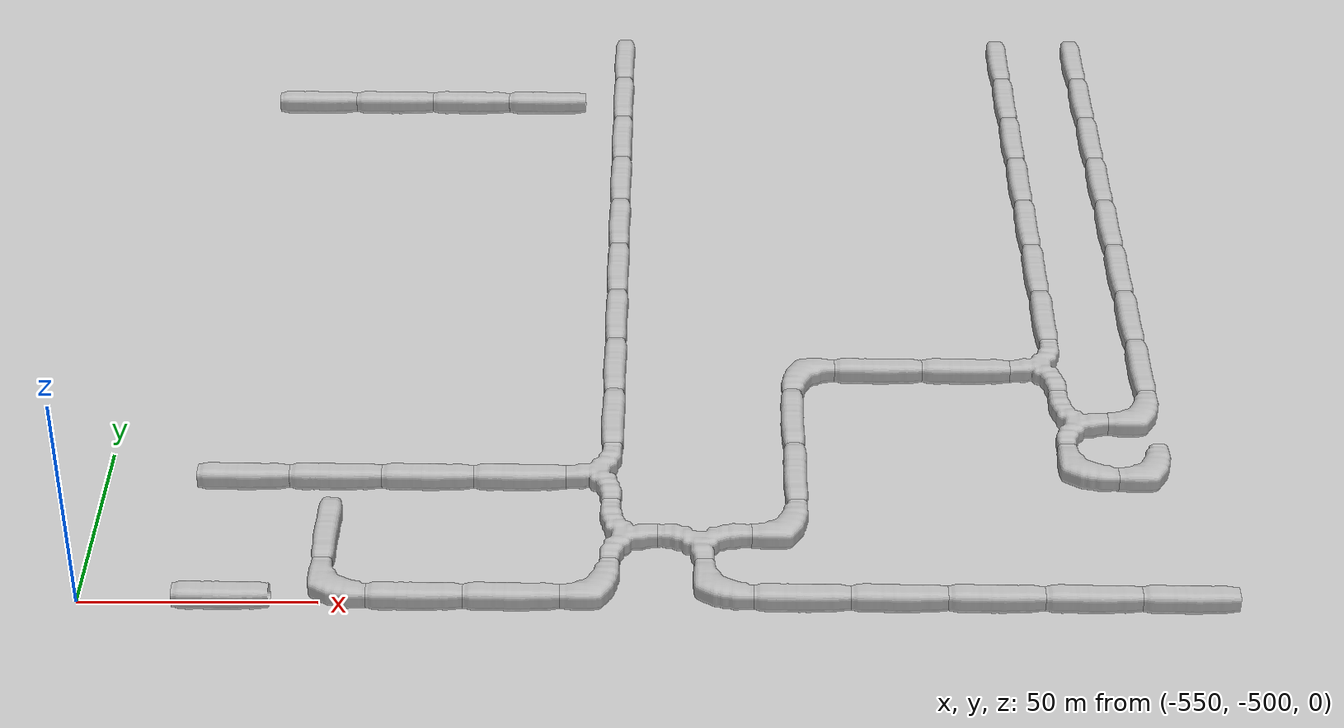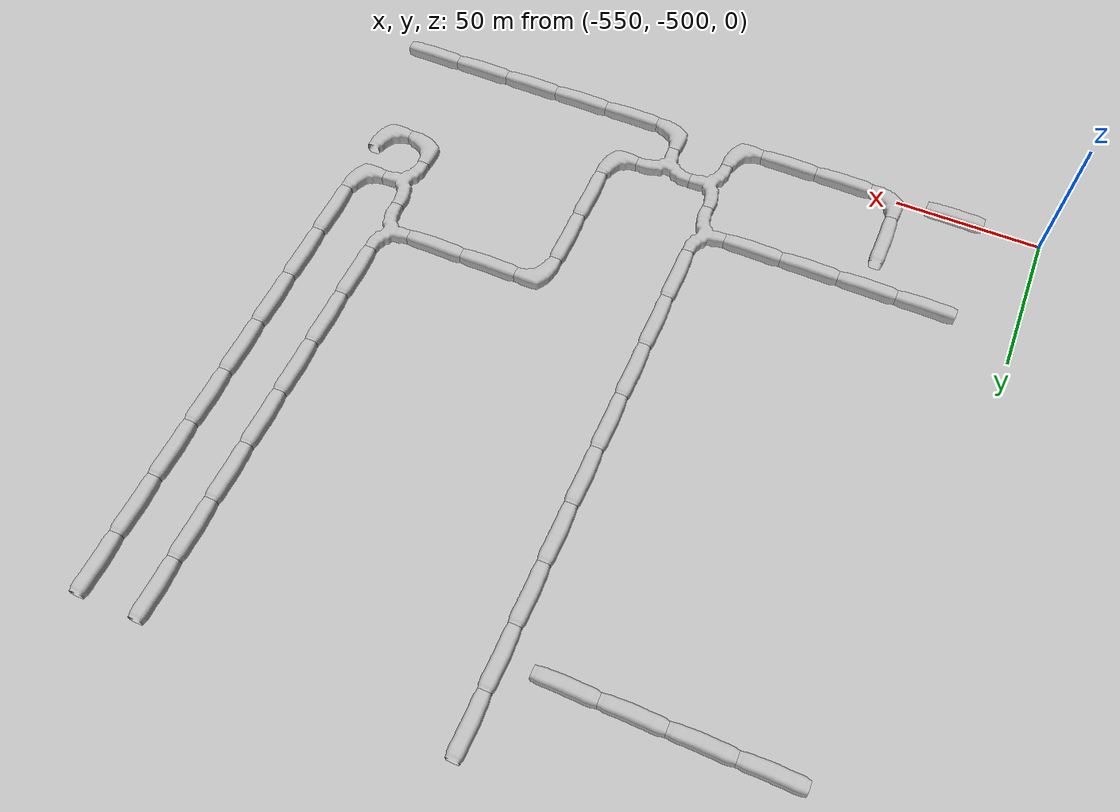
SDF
<sdf version="1.6">
 <world name="cave_32000_64">
  <include>
   <static>true</static>
   <name>cave_-22_-14</name>
   <pose>-440 -280 0 0 0 0.0</pose>
   <uri>model://cave_straight_20m</uri>
  </include>
  <include>
   <static>true</static>
   <name>cave_-22_-15</name>
   <pose>-440 -300 0 0 0 0.0</pose>
   <uri>model://cave_straight_20m</uri>
  </include>
  <include>
   <static>true</static>
   <name>cave_-22_-16</name>
   <pose>-440 -320 0 0 0 0.0</pose>
   <uri>model://cave_straight_20m</uri>
  </include>
  <include>
   <static>true</static>
   <name>cave_-22_-17</name>
   <pose>-440 -340 0 0 0 0.0</pose>
   <uri>model://cave_straight_20m</uri>
  </include>
  <include>
   <static>true</static>
   <name>cave_-22_-18</name>
   <pose>-440 -360 0 0 0 0.0</pose>
   <uri>model://cave_straight_20m</uri>
  </include>
  <include>
   <static>true</static>
   <name>cave_-22_-19</name>
   <pose>-440 -380 0 0 0 0.0</pose>
   <uri>model://cave_straight_20m</uri>
  </include>
  <include>
   <static>true</static>
   <name>cave_-22_-20</name>
   <pose>-440 -400 0 0 0 0.0</pose>
   <uri>model://cave_straight_20m</uri>
  </include>
  <include>
   <static>true</static>
   <name>cave_-22_-21</name>
   <pose>-440 -420 0 0 0 0.0</pose>
   <uri>model://cave_straight_20m</uri>
  </include>
  <include>
   <static>true</static>
   <name>cave_-22_-22</name>
   <pose>-440 -440 0 0 0 0.0</pose>
   <uri>model://cave_straight_20m</uri>
  </include>
  <include>
   <static>true</static>
   <name>cave_-22_-23</name>
   <pose>-440 -460 0 0 0 1.5707963267948966</pose>
   <uri>model://cave_3way_20m</uri>
  </include>
  <include>
   <static>true</static>
   <name>cave_-22_-24</name>
   <pose>-440 -480 0 0 0 -1.5707963267948966</pose>
   <uri>model://cave_3way_20m</uri>
  </include>
  <include>
   <static>true</static>
   <name>cave_-21_-24</name>
   <pose>-420 -480 0 0 0 3.141592653589793</pose>
   <uri>model://cave_3way_20m</uri>
  </include>
  <include>
   <static>true</static>
   <name>cave_-20_-24</name>
   <pose>-400 -480 0 0 0 1.5707963267948966</pose>
   <uri>model://cave_L_20m</uri>
  </include>
  <include>
   <static>true</static>
   <name>cave_-20_-23</name>
   <pose>-400 -460 0 0 0 0.0</pose>
   <uri>model://cave_straight_20m</uri>
  </include>
  <include>
   <static>true</static>
   <name>cave_-20_-22</name>
   <pose>-400 -440 0 0 0 0.0</pose>
   <uri>model://cave_straight_20m</uri>
  </include>
  <include>
   <static>true</static>
   <name>cave_-20_-21</name>
   <pose>-400 -420 0 0 0 -1.5707963267948966</pose>
   <uri>model://cave_L_20m</uri>
  </include>
  <include>
   <static>true</static>
   <name>cave_-19_-21</name>
   <pose>-380 -420 0 0 0 1.5707963267948966</pose>
   <uri>model://cave_straight_20m</uri>
  </include>
  <include>
   <static>true</static>
   <name>cave_-18_-21</name>
   <pose>-360 -420 0 0 0 1.5707963267948966</pose>
   <uri>model://cave_straight_20m</uri>
  </include>
  <include>
   <static>true</static>
   <name>cave_-17_-21</name>
   <pose>-340 -420 0 0 0 1.5707963267948966</pose>
   <uri>model://cave_3way_20m</uri>
  </include>
  <include>
   <static>true</static>
   <name>cave_-17_-22</name>
   <pose>-340 -440 0 0 0 -1.5707963267948966</pose>
   <uri>model://cave_3way_20m</uri>
  </include>
  <include>
   <static>true</static>
   <name>cave_-16_-22</name>
   <pose>-320 -440 0 0 0 1.5707963267948966</pose>
   <uri>model://cave_L_20m</uri>
  </include>
  <include>
   <static>true</static>
   <name>cave_-16_-21</name>
   <pose>-320 -420 0 0 0 0.0</pose>
   <uri>model://cave_straight_20m</uri>
  </include>
  <include>
   <static>true</static>
   <name>cave_-16_-20</name>
   <pose>-320 -400 0 0 0 0.0</pose>
   <uri>model://cave_straight_20m</uri>
  </include>
  <include>
   <static>true</static>
   <name>cave_-16_-19</name>
   <pose>-320 -380 0 0 0 0.0</pose>
   <uri>model://cave_straight_20m</uri>
  </include>
  <include>
   <static>true</static>
   <name>cave_-16_-18</name>
   <pose>-320 -360 0 0 0 0.0</pose>
   <uri>model://cave_straight_20m</uri>
  </include>
  <include>
   <static>true</static>
   <name>cave_-16_-17</name>
   <pose>-320 -340 0 0 0 0.0</pose>
   <uri>model://cave_straight_20m</uri>
  </include>
  <include>
   <static>true</static>
   <name>cave_-16_-16</name>
   <pose>-320 -320 0 0 0 0.0</pose>
   <uri>model://cave_straight_20m</uri>
  </include>
  <include>
   <static>true</static>
   <name>cave_-16_-15</name>
   <pose>-320 -300 0 0 0 0.0</pose>
   <uri>model://cave_straight_20m</uri>
  </include>
  <include>
   <static>true</static>
   <name>cave_-16_-14</name>
   <pose>-320 -280 0 0 0 0.0</pose>
   <uri>model://cave_straight_20m</uri>
  </include>
  <include>
   <static>true</static>
   <name>cave_-17_-23</name>
   <pose>-340 -460 0 0 0 0.0</pose>
   <uri>model://cave_L_20m</uri>
  </include>
  <include>
   <static>true</static>
   <name>cave_-16_-23</name>
   <pose>-320 -460 0 0 0 1.5707963267948966</pose>
   <uri>model://cave_L_20m</uri>
  </include>
  <include>
   <static>true</static>
   <name>cave_-17_-20</name>
   <pose>-340 -400 0 0 0 0.0</pose>
   <uri>model://cave_straight_20m</uri>
  </include>
  <include>
   <static>true</static>
   <name>cave_-17_-19</name>
   <pose>-340 -380 0 0 0 0.0</pose>
   <uri>model://cave_straight_20m</uri>
  </include>
  <include>
   <static>true</static>
   <name>cave_-17_-18</name>
   <pose>-340 -360 0 0 0 0.0</pose>
   <uri>model://cave_straight_20m</uri>
  </include>
  <include>
   <static>true</static>
   <name>cave_-17_-17</name>
   <pose>-340 -340 0 0 0 0.0</pose>
   <uri>model://cave_straight_20m</uri>
  </include>
  <include>
   <static>true</static>
   <name>cave_-17_-16</name>
   <pose>-340 -320 0 0 0 0.0</pose>
   <uri>model://cave_straight_20m</uri>
  </include>
  <include>
   <static>true</static>
   <name>cave_-17_-15</name>
   <pose>-340 -300 0 0 0 0.0</pose>
   <uri>model://cave_straight_20m</uri>
  </include>
  <include>
   <static>true</static>
   <name>cave_-17_-14</name>
   <pose>-340 -280 0 0 0 0.0</pose>
   <uri>model://cave_straight_20m</uri>
  </include>
  <include>
   <static>true</static>
   <name>cave_-21_-25</name>
   <pose>-420 -500 0 0 0 0.0</pose>
   <uri>model://cave_L_20m</uri>
  </include>
  <include>
   <static>true</static>
   <name>cave_-20_-25</name>
   <pose>-400 -500 0 0 0 1.5707963267948966</pose>
   <uri>model://cave_straight_20m</uri>
  </include>
  <include>
   <static>true</static>
   <name>cave_-19_-25</name>
   <pose>-380 -500 0 0 0 1.5707963267948966</pose>
   <uri>model://cave_straight_20m</uri>
  </include>
  <include>
   <static>true</static>
   <name>cave_-18_-25</name>
   <pose>-360 -500 0 0 0 1.5707963267948966</pose>
   <uri>model://cave_straight_20m</uri>
  </include>
  <include>
   <static>true</static>
   <name>cave_-17_-25</name>
   <pose>-340 -500 0 0 0 1.5707963267948966</pose>
   <uri>model://cave_straight_20m</uri>
  </include>
  <include>
   <static>true</static>
   <name>cave_-16_-25</name>
   <pose>-320 -500 0 0 0 1.5707963267948966</pose>
   <uri>model://cave_straight_20m</uri>
  </include>
  <include>
   <static>true</static>
   <name>cave_-22_-25</name>
   <pose>-440 -500 0 0 0 1.5707963267948966</pose>
   <uri>model://cave_L_20m</uri>
  </include>
  <include>
   <static>true</static>
   <name>cave_-23_-25</name>
   <pose>-460 -500 0 0 0 1.5707963267948966</pose>
   <uri>model://cave_straight_20m</uri>
  </include>
  <include>
   <static>true</static>
   <name>cave_-24_-25</name>
   <pose>-480 -500 0 0 0 1.5707963267948966</pose>
   <uri>model://cave_straight_20m</uri>
  </include>
  <include>
   <static>true</static>
   <name>cave_-25_-25</name>
   <pose>-500 -500 0 0 0 0.0</pose>
   <uri>model://cave_L_20m</uri>
  </include>
  <include>
   <static>true</static>
   <name>cave_-25_-24</name>
   <pose>-500 -480 0 0 0 0.0</pose>
   <uri>model://cave_straight_20m</uri>
  </include>
  <include>
   <static>true</static>
   <name>cave_-23_-23</name>
   <pose>-460 -460 0 0 0 1.5707963267948966</pose>
   <uri>model://cave_straight_20m</uri>
  </include>
  <include>
   <static>true</static>
   <name>cave_-24_-23</name>
   <pose>-480 -460 0 0 0 1.5707963267948966</pose>
   <uri>model://cave_straight_20m</uri>
  </include>
  <include>
   <static>true</static>
   <name>cave_-25_-23</name>
   <pose>-500 -460 0 0 0 1.5707963267948966</pose>
   <uri>model://cave_straight_20m</uri>
  </include>
  <include>
   <static>true</static>
   <name>cave_-26_-23</name>
   <pose>-520 -460 0 0 0 1.5707963267948966</pose>
   <uri>model://cave_straight_20m</uri>
  </include>
  <include>
   <static>true</static>
   <name>cave_-26_-25</name>
   <pose>-520 -500 0 0 0 1.5707963267948966</pose>
   <uri>model://cave_straight_20m</uri>
  </include>
  <include>
   <static>true</static>
   <name>cave_-26_-15</name>
   <pose>-520 -300 0 0 0 1.5707963267948966</pose>
   <uri>model://cave_straight_20m</uri>
  </include>
  <include>
   <static>true</static>
   <name>cave_-25_-15</name>
   <pose>-500 -300 0 0 0 1.5707963267948966</pose>
   <uri>model://cave_straight_20m</uri>
  </include>
  <include>
   <static>true</static>
   <name>cave_-24_-15</name>
   <pose>-480 -300 0 0 0 1.5707963267948966</pose>
   <uri>model://cave_straight_20m</uri>
  </include>
  <include>
   <static>true</static>
   <name>cave_-23_-15</name>
   <pose>-460 -300 0 0 0 1.5707963267948966</pose>
   <uri>model://cave_straight_20m</uri>
  </include>
 </world>
</sdf>
